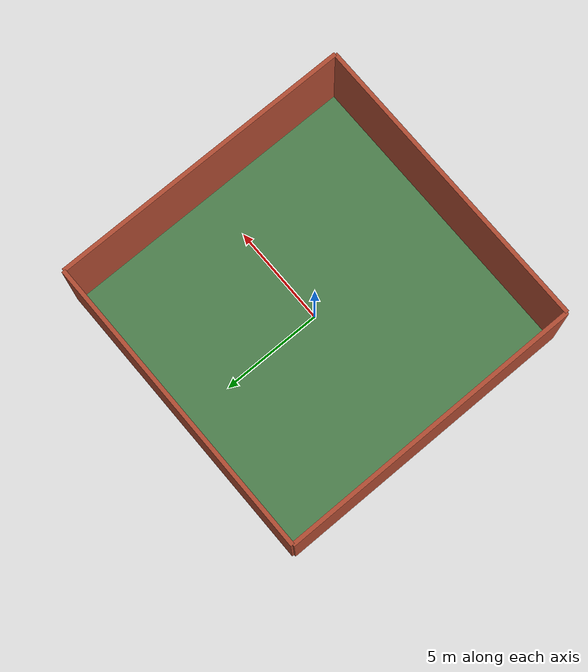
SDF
<?xml version="1.0" ?>
<sdf version="1.9">
  <world name="square_world">
    <light name="sun" type="directional">
      <cast_shadows>true</cast_shadows>
      <pose>0 10 0 0 0 -1.57079632679</pose>
      <diffuse>0.8 0.8 0.8 1</diffuse>
      <specular>0.2 0.2 0.2 1</specular>
      <attenuation>
        <range>1000</range>
        <constant>0.9</constant>
        <linear>0.01</linear>
        <quadratic>0.001</quadratic>
      </attenuation>
      <direction>-0.5 0.1 -0.9</direction>
    </light>
    <spherical_coordinates>
      <surface_model>EARTH_WGS84</surface_model>
      <latitude_deg>51.9906340</latitude_deg>
      <longitude_deg>4.3767889</longitude_deg>
      <elevation>45.110</elevation>
      <heading_deg>0</heading_deg><!-- GZ Harmonic fixed the WSU/ENU coordinate bug; no longer need heading=180 workaround -->
    </spherical_coordinates>
    <physics type="ode">
      <max_step_size>0.001</max_step_size>
      <real_time_update_rate>0</real_time_update_rate><!-- Handled by Paparazzi! -->
    </physics>
    <gravity>0 0 -9.8</gravity>
    <scene>
      <ambient>0.4 0.4 0.4 1</ambient>
      <background>0.7 0.7 0.7 1</background>
      <shadows>false</shadows>
    </scene>
    <model name="floor">
      <static>true</static>
      <pose>0.0 0.0 0 0 0 0</pose>
      <link name="link">
        <collision name="collision">
          <geometry>
            <plane>
              <normal>0 0 1</normal>
              <size>10 10</size>
            </plane>
          </geometry>
          <surface>
            <friction>
              <ode>
                <mu>100</mu>
                <mu2>50</mu2>
              </ode>
            </friction>
          </surface>
        </collision>
        <visual name="visual">
          <cast_shadows>false</cast_shadows>
          <geometry>
            <plane>
              <normal>0 0 1</normal>
              <size>15 15</size>
            </plane>
          </geometry>
          <material>
            <ambient>0.3 0.5 0.3 1</ambient>
            <diffuse>0.3 0.5 0.3 1</diffuse>
          </material>
        </visual>
      </link>
    </model>
    <model name="wall1">
      <static>true</static>
      <pose>0 7.5 2.5 0 0 0</pose>
      <link name="wall_link">
        <inertial>
          <mass>10000</mass>
        </inertial>
        <collision name="wall_brand_collision">
          <geometry>
            <box>
              <size>15 0.2 5.0</size>
            </box>
          </geometry>
        </collision>
        <visual name="wall_brand_visual">
          <geometry>
            <box>
              <size>15 0.2 5.0</size>
            </box>
          </geometry>
          <material>
            <ambient>0.7 0.3 0.2 1</ambient>
            <diffuse>0.7 0.3 0.2 1</diffuse>
          </material>
        </visual>
      </link>
    </model>
    <model name="wall2">
      <static>true</static>
      <pose>-7.5 0 2.5 0 0 -1.5708</pose>
      <link name="wall_link">
        <inertial>
          <mass>10000</mass>
        </inertial>
        <collision name="wall_collision">
          <geometry>
            <box>
              <size>15 0.2 5.0</size>
            </box>
          </geometry>
        </collision>
        <visual name="wall_visual">
          <geometry>
            <box>
              <size>15 0.2 5.0</size>
            </box>
          </geometry>
          <material>
            <ambient>0.7 0.3 0.2 1</ambient>
            <diffuse>0.7 0.3 0.2 1</diffuse>
          </material>
        </visual>
      </link>
    </model>
    <model name="wall3">
      <static>true</static>
      <pose>7.5 0 2.5 0 0 -1.5708</pose>
      <link name="wall_link">
        <inertial>
          <mass>10000</mass>
        </inertial>
        <collision name="wall_collision">
          <geometry>
            <box>
              <size>15 0.2 5.0</size>
            </box>
          </geometry>
        </collision>
        <visual name="wall_visual">
          <geometry>
            <box>
              <size>15 0.2 5.0</size>
            </box>
          </geometry>
          <material>
            <ambient>0.7 0.3 0.2 1</ambient>
            <diffuse>0.7 0.3 0.2 1</diffuse>
          </material>
        </visual>
      </link>
    </model>
    <model name="wall4">
      <static>true</static>
      <pose>0 -7.5 2.5 0 0 0</pose>
      <link name="wall_link">
        <inertial>
          <mass>10000</mass>
        </inertial>
        <collision name="wall_collision">
          <geometry>
            <box>
              <size>15 0.2 5.0</size>
            </box>
          </geometry>
        </collision>
        <visual name="wall_visual">
          <geometry>
            <box>
              <size>15 0.2 5.0</size>
            </box>
          </geometry>
          <material>
            <ambient>0.7 0.3 0.2 1</ambient>
            <diffuse>0.7 0.3 0.2 1</diffuse>
          </material>
        </visual>
      </link>
    </model>
  </world>
</sdf>
